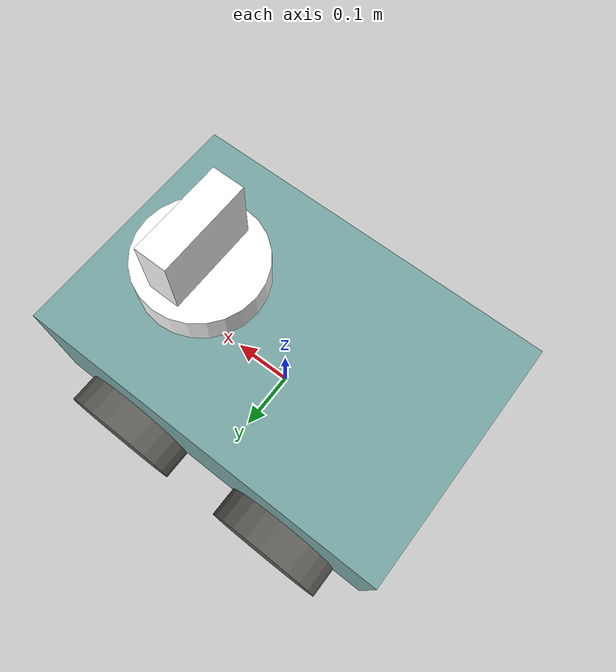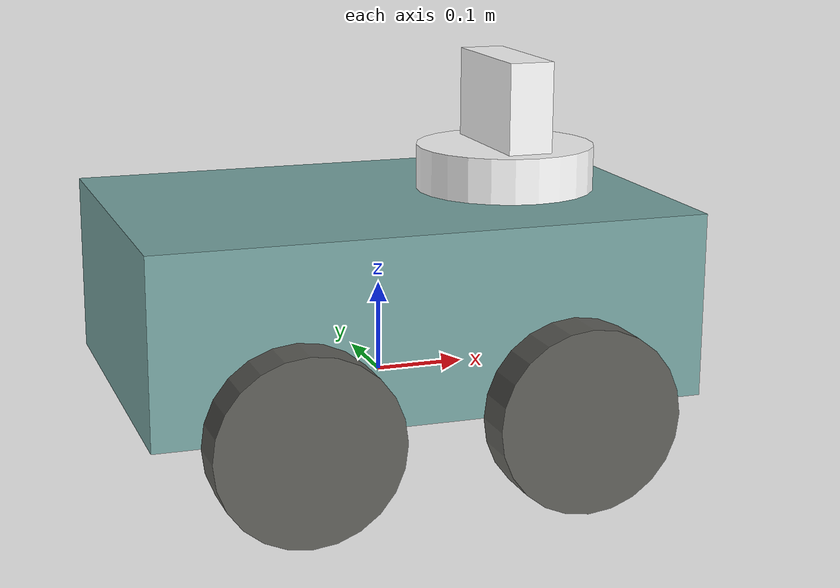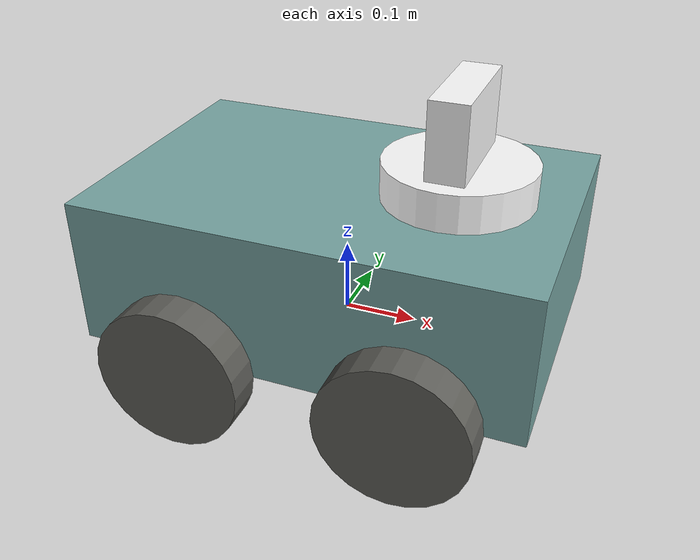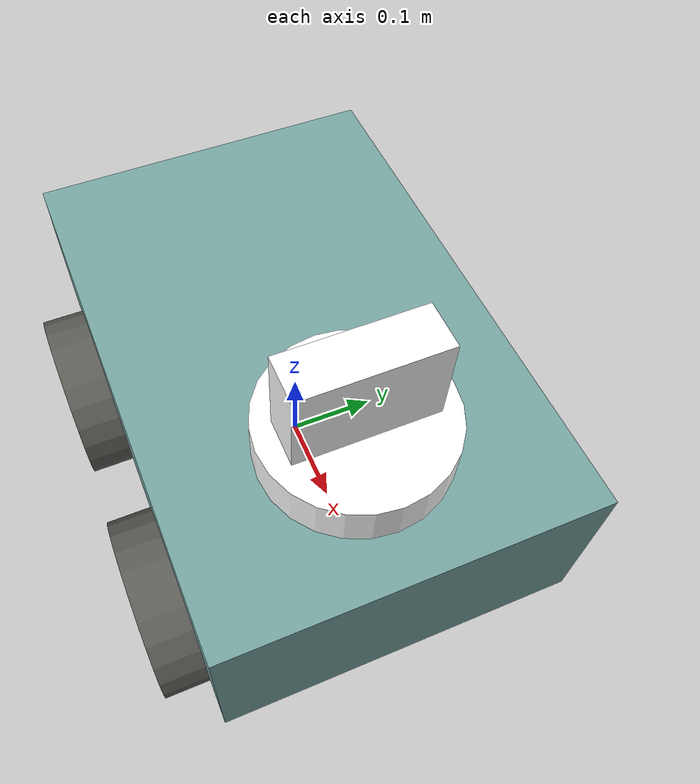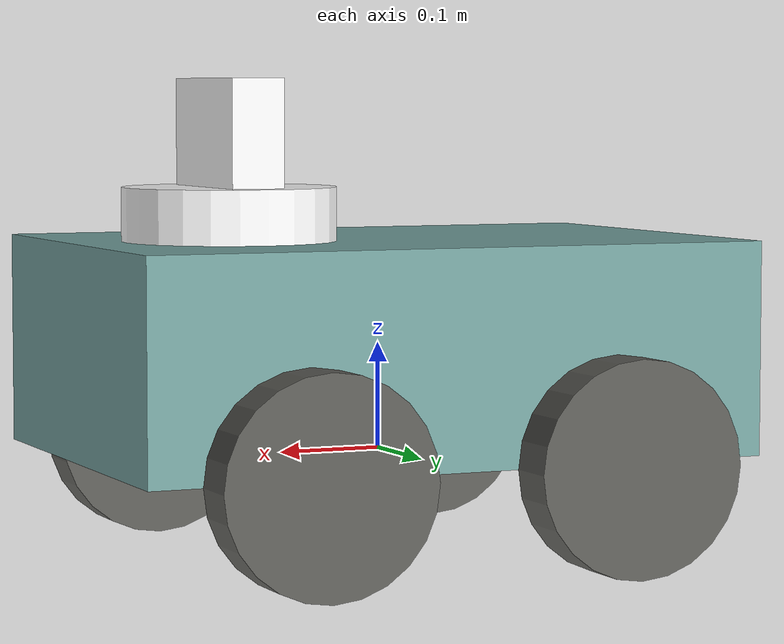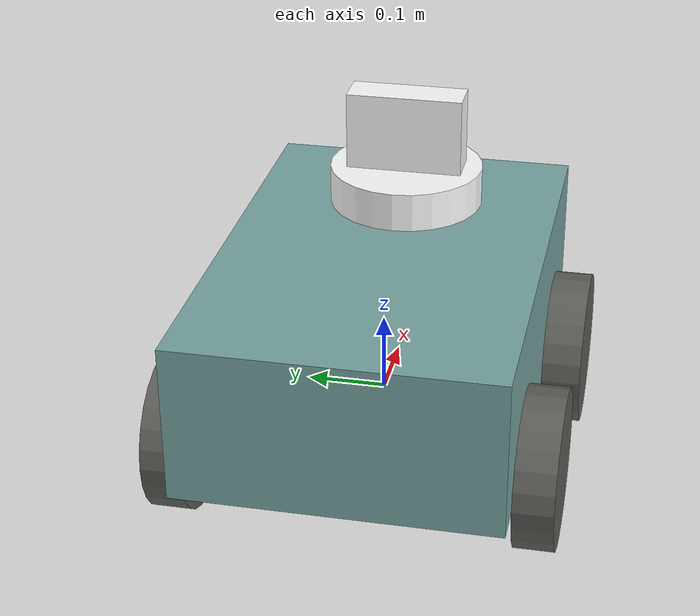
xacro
<?xml version="1.0"?>
<robot name="four_wheel_robot" xmlns:xacro="http://www.ros.org/wiki/xacro">

    <!--MATERIALS-->
    <material name="cyan_green">
        <color rgba="0.47 0.65 0.64 1"/>
    </material>

    <material name="dark_grey">
        <color rgba="0.37 0.37 0.35 1"/>
    </material>
    <material name="white">
        <color rgba="1 1 1 1"/>
    </material>

    <!--LINKS-->
    <!--base_link-->
    <link name="base_link">
        <visual>
            <geometry>
                <box size="0.6 0.4 0.2"/>
            </geometry>
            <origin xyz="0 0 0.1" rpy="0 0 0"/>
            <material name="cyan_green"/>
        </visual>
        <collision>
            <geometry>
                <box size="0.6 0.4 0.2"/>
            </geometry>
            <origin xyz="0 0 0.1" rpy="0 0 0"/>
        </collision>
        <inertial>
            <origin xyz="0 0 0.1" rpy="0 0 0"/>
            <mass value="5.0"/>
            <inertia ixx="0.08" ixy="0.0" ixz="0.0" iyy="0.05" iyz="0.0" izz="0.08"/>
        </inertial>
    </link>

    <!--wheels-->
    <xacro:macro name="wheel_link" params="prefix">
        <link name="${prefix}_wheel">
            <visual>
                <geometry>
                    <cylinder radius="0.1" length="0.05"/>
                </geometry>
                <origin xyz="0 0 0" rpy="1.57 0 0"/>
                <material name="dark_grey"/>
            </visual>
            <collision>
                <geometry>
                    <cylinder radius="0.1" length="0.05"/>
                </geometry>
                <origin xyz="0 0 0" rpy="1.57 0 0"/>
            </collision>
            <inertial>
                <origin xyz="0 0 0" rpy="1.57 0 0"/>
                <mass value="0.5"/>
                <inertia ixx="0.0025" ixy="0.0" ixz="0.0" iyy="0.0025" iyz="0.0" izz="0.005"/>
            </inertial>
        </link>
    </xacro:macro>

    <xacro:wheel_link prefix="left_back"/>
    <xacro:wheel_link prefix="right_back"/>
    <xacro:wheel_link prefix="left_front"/>
    <xacro:wheel_link prefix="right_front"/>

    <!--lidar-->
    <link name="lidar_link">

        <visual>
            <geometry>
                <cylinder radius="0.1" length="0.05"/>
            </geometry>
            <origin xyz="0 0 0" rpy="0 0 0"/>
            <material name="white"/>
        </visual>
        <collision>
            <geometry>
                <cylinder radius="0.1" length="0.05"/>
            </geometry>
            <origin xyz="0 0 0" rpy="0 0 0"/>
        </collision>
        <inertial>
            <origin xyz="0 0 0" rpy="0 0 0"/>
            <mass value="0.2"/>
            <inertia ixx="0.0005" ixy="0.0" ixz="0.0" iyy="0.0005" iyz="0.0" izz="0.0001"/>
        </inertial>
    </link>

    <!--camera-->
    <link name="camera_link">
        <visual>
            <geometry>
                <box size="0.05 0.15 0.1"/>
            </geometry>
            <origin xyz="0 0 0" rpy="0 0 0"/>
            <material name="white"/>
        </visual>
        <collision>
            <geometry>
                <box size="0.15 0.1 0.05"/>
            </geometry>
            <origin xyz="0 0 0" rpy="0 0 0"/>
        </collision>
        <inertial>
            <mass value="0.2"/>
            <inertia
                ixx="0.000416667" ixy="0.0" ixz="0.0"
                iyy="0.000416667" iyz="0.0"
                izz="0.000416667"/>
        </inertial>
    </link>

    <!--JOINTS-->
    <!--base_wheel-->
    <xacro:macro name="wheel_joint" params="prefix lr fb">
        <joint name="base_${prefix}_wheel_joint" type="continuous">
            <parent link="base_link"/>
            <child link="${prefix}_wheel"/>
            <origin xyz="${fb} ${lr} 0" rpy="0 0 0"/>
            <axis xyz="0 1 0"/>
        </joint>
    </xacro:macro>

    <xacro:wheel_joint prefix="left_back" lr="0.225" fb="-0.15"/>
    <xacro:wheel_joint prefix="right_back" lr="-0.225" fb="-0.15"/>
    <xacro:wheel_joint prefix="left_front" lr="0.225" fb="0.15"/>
    <xacro:wheel_joint prefix="right_front" lr="-0.225" fb="0.15"/>

    <!--base_lidar-->
    <joint name="base_lidar_joint" type="fixed">
        <parent link="base_link"/>
        <child link="lidar_link"/>
        <origin xyz="0.15 0 0.225" rpy="0 0 0"/>
    </joint>

    <!--lidar_camera-->
    <joint name="lidar_camera_joint" type="fixed">
        <parent link="lidar_link"/>
        <child link="camera_link"/>
        <origin xyz="0 0 0.075" rpy="0 0 0"/>
    </joint>

    <!--GAZEBO_MATERIALS-->
    <gazebo reference="base_link">
        <material>Gazebo/Cyan</material>
    </gazebo>
    <gazebo reference="wheel_link">
        <material>Gazebo/Grey</material>
    </gazebo>
    <gazebo reference="lidar_link">
        <material>Gazebo/White</material>
    </gazebo>
    <gazebo reference="camera_link">
        <material>Gazebo/White</material>
    </gazebo>

    <!--GAZEBO_PLUGINS-->
    <!--diff_drive_plugin-->
    <gazebo>
        <plugin name="differential_drive_controller" filename="libgazebo_ros_diff_drive.so">
            <ros>
            <remapping>cmd_vel:=/cmd_vel</remapping>
            <remapping>odom:=/odom</remapping>
            </ros>
            <left_joint>base_left_back_wheel_joint</left_joint>
            <right_joint>base_right_back_wheel_joint</right_joint>
            <wheel_separation>0.45</wheel_separation>
            <wheel_diameter>0.2</wheel_diameter>
            <robot_base_frame>base_link</robot_base_frame>
            <odometry_frame>odom</odometry_frame>
            <odometry_topic>odom</odometry_topic>
            <command_topic>cmd_vel</command_topic>
            <publish_odom>true</publish_odom>
            <publish_odom_tf>true</publish_odom_tf>
            <publish_wheel_tf>true</publish_wheel_tf>
            <update_rate>50</update_rate>
        </plugin>
    </gazebo>
    <!--lidar_plugin-->
   <gazebo reference="lidar_link">
        <sensor name="lidar" type="ray">
            <pose>0 0 0 0 0 0</pose>
            <update_rate>10</update_rate>

            <ray>
            <scan>
                <horizontal>
                <samples>360</samples>
                <resolution>1.0</resolution>
                <min_angle>-3.14159</min_angle>
                <max_angle>3.14159</max_angle>
                </horizontal>
            </scan>

            <range>
                <min>0.12</min>
                <max>6.0</max>
                <resolution>0.01</resolution>
            </range>
            </ray>

            <plugin name="gazebo_ros_laser_controller" filename="libgazebo_ros_ray_sensor.so">
            <ros>
                <remapping>scan:=scan</remapping>
            </ros>
            <frame_name>lidar_link</frame_name>
            </plugin>
        </sensor>
    </gazebo>
    <!--camera_plugin-->
    <gazebo reference="camera_link">
        <sensor type="camera" name="camera">
            <always_on>true</always_on>
            <update_rate>30.0</update_rate>
            <visualize>true</visualize>
            <camera>
            <horizontal_fov>1.047</horizontal_fov>
            <image>
                <width>640</width>
                <height>480</height>
                <format>R8G8B8</format>
            </image>
            <clip>
                <near>0.1</near>
                <far>100.0</far>
            </clip>
            </camera>
            <plugin name="camera_plugin" filename="libgazebo_ros_camera.so">
            <ros>
                <namespace>/camera</namespace>
            </ros>
            <camera_name>camera</camera_name>
            <frame_name>camera_link</frame_name>
            </plugin>
        </sensor>
    </gazebo>

</robot>
